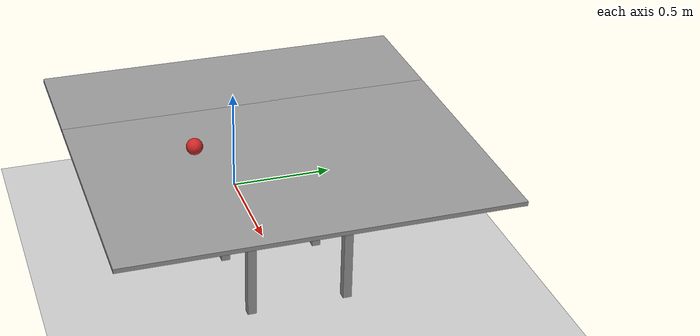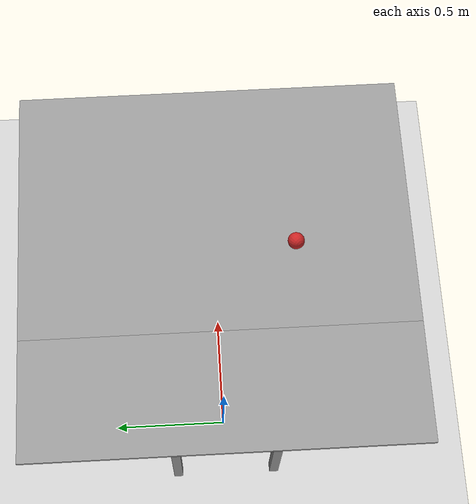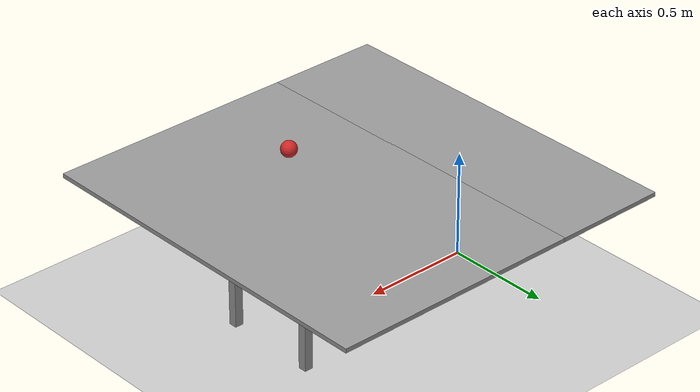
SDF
<sdf version="1.6">
 <world name="ur5_robot_base">
  <gravity>0 0 -9.81</gravity>
  <physics name="default_physics" default="0" type="ode">
   <max_step_size>0.001</max_step_size>
   <real_time_factor>1</real_time_factor>
   <real_time_update_rate>1000</real_time_update_rate>
  </physics>
  <scene><ambient>0.4 0.4 0.4 1</ambient><background>0.7 0.7 0.7 1</background><shadows>1</shadows></scene>
  <light name="sun" type="directional">
   <pose>0 0 10 0 -0 0</pose>
   <diffuse>0.8 0.8 0.8 1</diffuse>
   <specular>0.1 0.1 0.1 1</specular>
   <attenuation>
    <range>1000</range>
    <constant>0.9</constant>
    <linear>0.01</linear>
    <quadratic>0.001</quadratic>
   </attenuation>
   <direction>-0.5 0.5 -1</direction>
  </light>
  <model name="ground_plane">
   <static>1</static>
   <link name="link">
    <collision name="collision">
     <geometry><plane><normal>0 0 1</normal><size>100 100</size></plane></geometry>
     <surface><friction><ode><mu>100</mu><mu2>50</mu2></ode></friction></surface>
    </collision>
    <visual name="visual">
     <cast_shadows>0</cast_shadows>
     <geometry><plane><normal>0 0 1</normal><size>100 100</size></plane></geometry>
     <material>
      <script><uri>file://media/materials/scripts/gazebo.material</uri><name>Gazebo/Grey</name></script>
     </material>
    </visual>
   </link>
  </model>
  <magnetic_field>6e-06 2.3e-05 -4.2e-05</magnetic_field>
  <atmosphere type="adiabatic"/>
  <spherical_coordinates>
   <surface_model>EARTH_WGS84</surface_model>
   <latitude_deg>0</latitude_deg>
   <longitude_deg>0</longitude_deg>
   <elevation>0</elevation>
   <heading_deg>0</heading_deg>
  </spherical_coordinates>
  <model name="ur5_base_0">
   <link name="ur5_base::top_plate">
    <pose>0 0 0.58 0 -0 0</pose>
    <inertial>
     <inertia><ixx>nan</ixx><ixy>0</ixy><ixz>0</ixz><iyy>nan</iyy><iyz>0</iyz><izz>nan</izz></inertia>
     <mass>0</mass>
    </inertial>
    <visual name="top_plate_visual">
     <geometry><box><size>0.534136 1.75663 0.02</size></box></geometry>
     <material>
      <script><uri>file://media/materials/scripts/gazebo.material</uri><name>Gazebo/Grey</name></script>
      <ambient>0.3 0.3 0.3 1</ambient>
      <diffuse>0.7 0.7 0.7 1</diffuse>
      <specular>0.01 0.01 0.01 1</specular>
      <emissive>0 0 0 1</emissive>
     </material>
    </visual>
    <collision name="top_plate_collision">
     <geometry><box><size>0.534136 1.75663 0.02</size></box></geometry>
     <surface>
      <friction>
       <ode><mu>1</mu><mu2>1</mu2><fdir1>0 0 0</fdir1><slip1>0</slip1><slip2>0</slip2></ode>
       <torsional>
        <coefficient>1</coefficient>
        <patch_radius>0</patch_radius>
        <surface_radius>0</surface_radius>
        <use_patch_radius>1</use_patch_radius>
        <ode><slip>0</slip></ode>
       </torsional>
      </friction>
      <bounce><restitution_coefficient>0</restitution_coefficient><threshold>1e+06</threshold></bounce>
      <contact>
       <collide_without_contact>0</collide_without_contact>
       <collide_without_contact_bitmask>1</collide_without_contact_bitmask>
       <collide_bitmask>1</collide_bitmask>
       <ode>
        <soft_cfm>0</soft_cfm>
        <soft_erp>0.2</soft_erp>
        <kp>1e+13</kp>
        <kd>1</kd>
        <max_vel>0.01</max_vel>
        <min_depth>0</min_depth>
       </ode>
       <bullet>
        <split_impulse>1</split_impulse>
        <split_impulse_penetration_threshold>-0.01</split_impulse_penetration_threshold>
        <soft_cfm>0</soft_cfm>
        <soft_erp>0.2</soft_erp>
        <kp>1e+13</kp>
        <kd>1</kd>
       </bullet>
      </contact>
     </surface>
    </collision>
   </link>
   <link name="ur5_base::leg1">
    <pose>0.22 0.22 0.285 0 -0 0</pose>
    <visual name="leg1_visual">
     <geometry><box><size>0.04 0.04 0.57</size></box></geometry>
     <material>
      <script><uri>file://media/materials/scripts/gazebo.material</uri><name>Gazebo/Grey</name></script>
      <ambient>0.3 0.3 0.3 1</ambient>
      <diffuse>0.7 0.7 0.7 1</diffuse>
      <specular>0.01 0.01 0.01 1</specular>
      <emissive>0 0 0 1</emissive>
     </material>
    </visual>
    <collision name="leg1_collision">
     <geometry><box><size>0.04 0.04 0.57</size></box></geometry>
     <surface>
      <friction>
       <ode><mu>1</mu><mu2>1</mu2><fdir1>0 0 0</fdir1><slip1>0</slip1><slip2>0</slip2></ode>
       <torsional>
        <coefficient>1</coefficient>
        <patch_radius>0</patch_radius>
        <surface_radius>0</surface_radius>
        <use_patch_radius>1</use_patch_radius>
        <ode><slip>0</slip></ode>
       </torsional>
      </friction>
      <bounce><restitution_coefficient>0</restitution_coefficient><threshold>1e+06</threshold></bounce>
      <contact>
       <collide_without_contact>0</collide_without_contact>
       <collide_without_contact_bitmask>1</collide_without_contact_bitmask>
       <collide_bitmask>1</collide_bitmask>
       <ode>
        <soft_cfm>0</soft_cfm>
        <soft_erp>0.2</soft_erp>
        <kp>1e+13</kp>
        <kd>1</kd>
        <max_vel>0.01</max_vel>
        <min_depth>0</min_depth>
       </ode>
       <bullet>
        <split_impulse>1</split_impulse>
        <split_impulse_penetration_threshold>-0.01</split_impulse_penetration_threshold>
        <soft_cfm>0</soft_cfm>
        <soft_erp>0.2</soft_erp>
        <kp>1e+13</kp>
        <kd>1</kd>
       </bullet>
      </contact>
     </surface>
    </collision>
   </link>
   <link name="ur5_base::leg2">
    <pose>-0.22 0.22 0.285 0 -0 0</pose>
    <visual name="leg2_visual">
     <geometry><box><size>0.04 0.04 0.57</size></box></geometry>
     <material>
      <script><uri>file://media/materials/scripts/gazebo.material</uri><name>Gazebo/Grey</name></script>
      <ambient>0.3 0.3 0.3 1</ambient>
      <diffuse>0.7 0.7 0.7 1</diffuse>
      <specular>0.01 0.01 0.01 1</specular>
      <emissive>0 0 0 1</emissive>
     </material>
    </visual>
    <collision name="leg2_collision">
     <geometry><box><size>0.04 0.04 0.57</size></box></geometry>
     <surface>
      <friction>
       <ode><mu>1</mu><mu2>1</mu2><fdir1>0 0 0</fdir1><slip1>0</slip1><slip2>0</slip2></ode>
       <torsional>
        <coefficient>1</coefficient>
        <patch_radius>0</patch_radius>
        <surface_radius>0</surface_radius>
        <use_patch_radius>1</use_patch_radius>
        <ode><slip>0</slip></ode>
       </torsional>
      </friction>
      <bounce><restitution_coefficient>0</restitution_coefficient><threshold>1e+06</threshold></bounce>
      <contact>
       <collide_without_contact>0</collide_without_contact>
       <collide_without_contact_bitmask>1</collide_without_contact_bitmask>
       <collide_bitmask>1</collide_bitmask>
       <ode>
        <soft_cfm>0</soft_cfm>
        <soft_erp>0.2</soft_erp>
        <kp>1e+13</kp>
        <kd>1</kd>
        <max_vel>0.01</max_vel>
        <min_depth>0</min_depth>
       </ode>
       <bullet>
        <split_impulse>1</split_impulse>
        <split_impulse_penetration_threshold>-0.01</split_impulse_penetration_threshold>
        <soft_cfm>0</soft_cfm>
        <soft_erp>0.2</soft_erp>
        <kp>1e+13</kp>
        <kd>1</kd>
       </bullet>
      </contact>
     </surface>
    </collision>
   </link>
   <link name="ur5_base::leg3">
    <pose>0.22 -0.22 0.285 0 -0 0</pose>
    <visual name="leg3_visual">
     <geometry><box><size>0.04 0.04 0.57</size></box></geometry>
     <material>
      <script><uri>file://media/materials/scripts/gazebo.material</uri><name>Gazebo/Grey</name></script>
      <ambient>0.3 0.3 0.3 1</ambient>
      <diffuse>0.7 0.7 0.7 1</diffuse>
      <specular>0.01 0.01 0.01 1</specular>
      <emissive>0 0 0 1</emissive>
     </material>
    </visual>
    <collision name="leg3_collision">
     <geometry><box><size>0.04 0.04 0.57</size></box></geometry>
     <surface>
      <friction>
       <ode><mu>1</mu><mu2>1</mu2><fdir1>0 0 0</fdir1><slip1>0</slip1><slip2>0</slip2></ode>
       <torsional>
        <coefficient>1</coefficient>
        <patch_radius>0</patch_radius>
        <surface_radius>0</surface_radius>
        <use_patch_radius>1</use_patch_radius>
        <ode><slip>0</slip></ode>
       </torsional>
      </friction>
      <bounce><restitution_coefficient>0</restitution_coefficient><threshold>1e+06</threshold></bounce>
      <contact>
       <collide_without_contact>0</collide_without_contact>
       <collide_without_contact_bitmask>1</collide_without_contact_bitmask>
       <collide_bitmask>1</collide_bitmask>
       <ode>
        <soft_cfm>0</soft_cfm>
        <soft_erp>0.2</soft_erp>
        <kp>1e+13</kp>
        <kd>1</kd>
        <max_vel>0.01</max_vel>
        <min_depth>0</min_depth>
       </ode>
       <bullet>
        <split_impulse>1</split_impulse>
        <split_impulse_penetration_threshold>-0.01</split_impulse_penetration_threshold>
        <soft_cfm>0</soft_cfm>
        <soft_erp>0.2</soft_erp>
        <kp>1e+13</kp>
        <kd>1</kd>
       </bullet>
      </contact>
     </surface>
    </collision>
   </link>
   <link name="ur5_base::leg4">
    <pose>-0.22 -0.22 0.285 0 -0 0</pose>
    <visual name="leg4_visual">
     <geometry><box><size>0.04 0.04 0.57</size></box></geometry>
     <material>
      <script><uri>file://media/materials/scripts/gazebo.material</uri><name>Gazebo/Grey</name></script>
      <ambient>0.3 0.3 0.3 1</ambient>
      <diffuse>0.7 0.7 0.7 1</diffuse>
      <specular>0.01 0.01 0.01 1</specular>
      <emissive>0 0 0 1</emissive>
     </material>
    </visual>
    <collision name="leg4_collision">
     <geometry><box><size>0.04 0.04 0.57</size></box></geometry>
     <surface>
      <friction>
       <ode><mu>1</mu><mu2>1</mu2><fdir1>0 0 0</fdir1><slip1>0</slip1><slip2>0</slip2></ode>
       <torsional>
        <coefficient>1</coefficient>
        <patch_radius>0</patch_radius>
        <surface_radius>0</surface_radius>
        <use_patch_radius>1</use_patch_radius>
        <ode><slip>0</slip></ode>
       </torsional>
      </friction>
      <bounce><restitution_coefficient>0</restitution_coefficient><threshold>1e+06</threshold></bounce>
      <contact>
       <collide_without_contact>0</collide_without_contact>
       <collide_without_contact_bitmask>1</collide_without_contact_bitmask>
       <collide_bitmask>1</collide_bitmask>
       <ode>
        <soft_cfm>0</soft_cfm>
        <soft_erp>0.2</soft_erp>
        <kp>1e+13</kp>
        <kd>1</kd>
        <max_vel>0.01</max_vel>
        <min_depth>0</min_depth>
       </ode>
       <bullet>
        <split_impulse>1</split_impulse>
        <split_impulse_penetration_threshold>-0.01</split_impulse_penetration_threshold>
        <soft_cfm>0</soft_cfm>
        <soft_erp>0.2</soft_erp>
        <kp>1e+13</kp>
        <kd>1</kd>
       </bullet>
      </contact>
     </surface>
    </collision>
   </link>
   <static>1</static>
  </model>
  <model name="ur5_base_0_clone_0">
   <link name="ur5_base::top_plate">
    <pose>0 0 0.58 0 -0 0</pose>
    <inertial>
     <inertia><ixx>nan</ixx><ixy>0</ixy><ixz>0</ixz><iyy>nan</iyy><iyz>0</iyz><izz>nan</izz></inertia>
     <mass>0</mass>
    </inertial>
    <visual name="top_plate_visual">
     <geometry><box><size>1.18116 1.75663 0.02</size></box></geometry>
     <material>
      <script><uri>file://media/materials/scripts/gazebo.material</uri><name>Gazebo/Grey</name></script>
      <ambient>0.3 0.3 0.3 1</ambient>
      <diffuse>0.7 0.7 0.7 1</diffuse>
      <specular>0.01 0.01 0.01 1</specular>
      <emissive>0 0 0 1</emissive>
     </material>
    </visual>
    <collision name="top_plate_collision">
     <geometry><box><size>1.18116 1.75663 0.02</size></box></geometry>
     <surface>
      <friction>
       <ode><mu>1</mu><mu2>1</mu2><fdir1>0 0 0</fdir1><slip1>0</slip1><slip2>0</slip2></ode>
       <torsional>
        <coefficient>1</coefficient>
        <patch_radius>0</patch_radius>
        <surface_radius>0</surface_radius>
        <use_patch_radius>1</use_patch_radius>
        <ode><slip>0</slip></ode>
       </torsional>
      </friction>
      <bounce><restitution_coefficient>0</restitution_coefficient><threshold>1e+06</threshold></bounce>
      <contact>
       <collide_without_contact>0</collide_without_contact>
       <collide_without_contact_bitmask>1</collide_without_contact_bitmask>
       <collide_bitmask>1</collide_bitmask>
       <ode>
        <soft_cfm>0</soft_cfm>
        <soft_erp>0.2</soft_erp>
        <kp>1e+13</kp>
        <kd>1</kd>
        <max_vel>0.01</max_vel>
        <min_depth>0</min_depth>
       </ode>
       <bullet>
        <split_impulse>1</split_impulse>
        <split_impulse_penetration_threshold>-0.01</split_impulse_penetration_threshold>
        <soft_cfm>0</soft_cfm>
        <soft_erp>0.2</soft_erp>
        <kp>1e+13</kp>
        <kd>1</kd>
       </bullet>
      </contact>
     </surface>
    </collision>
   </link>
   <link name="ur5_base::leg1">
    <pose>0.22 0.22 0.285 0 -0 0</pose>
    <visual name="leg1_visual">
     <geometry><box><size>0.04 0.04 0.57</size></box></geometry>
     <material>
      <script><uri>file://media/materials/scripts/gazebo.material</uri><name>Gazebo/Grey</name></script>
      <ambient>0.3 0.3 0.3 1</ambient>
      <diffuse>0.7 0.7 0.7 1</diffuse>
      <specular>0.01 0.01 0.01 1</specular>
      <emissive>0 0 0 1</emissive>
     </material>
    </visual>
    <collision name="leg1_collision">
     <geometry><box><size>0.04 0.04 0.57</size></box></geometry>
     <surface>
      <friction>
       <ode><mu>1</mu><mu2>1</mu2><fdir1>0 0 0</fdir1><slip1>0</slip1><slip2>0</slip2></ode>
       <torsional>
        <coefficient>1</coefficient>
        <patch_radius>0</patch_radius>
        <surface_radius>0</surface_radius>
        <use_patch_radius>1</use_patch_radius>
        <ode><slip>0</slip></ode>
       </torsional>
      </friction>
      <bounce><restitution_coefficient>0</restitution_coefficient><threshold>1e+06</threshold></bounce>
      <contact>
       <collide_without_contact>0</collide_without_contact>
       <collide_without_contact_bitmask>1</collide_without_contact_bitmask>
       <collide_bitmask>1</collide_bitmask>
       <ode>
        <soft_cfm>0</soft_cfm>
        <soft_erp>0.2</soft_erp>
        <kp>1e+13</kp>
        <kd>1</kd>
        <max_vel>0.01</max_vel>
        <min_depth>0</min_depth>
       </ode>
       <bullet>
        <split_impulse>1</split_impulse>
        <split_impulse_penetration_threshold>-0.01</split_impulse_penetration_threshold>
        <soft_cfm>0</soft_cfm>
        <soft_erp>0.2</soft_erp>
        <kp>1e+13</kp>
        <kd>1</kd>
       </bullet>
      </contact>
     </surface>
    </collision>
   </link>
   <link name="ur5_base::leg2">
    <pose>-0.22 0.22 0.285 0 -0 0</pose>
    <visual name="leg2_visual">
     <geometry><box><size>0.04 0.04 0.57</size></box></geometry>
     <material>
      <script><uri>file://media/materials/scripts/gazebo.material</uri><name>Gazebo/Grey</name></script>
      <ambient>0.3 0.3 0.3 1</ambient>
      <diffuse>0.7 0.7 0.7 1</diffuse>
      <specular>0.01 0.01 0.01 1</specular>
      <emissive>0 0 0 1</emissive>
     </material>
    </visual>
    <collision name="leg2_collision">
     <geometry><box><size>0.04 0.04 0.57</size></box></geometry>
     <surface>
      <friction>
       <ode><mu>1</mu><mu2>1</mu2><fdir1>0 0 0</fdir1><slip1>0</slip1><slip2>0</slip2></ode>
       <torsional>
        <coefficient>1</coefficient>
        <patch_radius>0</patch_radius>
        <surface_radius>0</surface_radius>
        <use_patch_radius>1</use_patch_radius>
        <ode><slip>0</slip></ode>
       </torsional>
      </friction>
      <bounce><restitution_coefficient>0</restitution_coefficient><threshold>1e+06</threshold></bounce>
      <contact>
       <collide_without_contact>0</collide_without_contact>
       <collide_without_contact_bitmask>1</collide_without_contact_bitmask>
       <collide_bitmask>1</collide_bitmask>
       <ode>
        <soft_cfm>0</soft_cfm>
        <soft_erp>0.2</soft_erp>
        <kp>1e+13</kp>
        <kd>1</kd>
        <max_vel>0.01</max_vel>
        <min_depth>0</min_depth>
       </ode>
       <bullet>
        <split_impulse>1</split_impulse>
        <split_impulse_penetration_threshold>-0.01</split_impulse_penetration_threshold>
        <soft_cfm>0</soft_cfm>
        <soft_erp>0.2</soft_erp>
        <kp>1e+13</kp>
        <kd>1</kd>
       </bullet>
      </contact>
     </surface>
    </collision>
   </link>
   <link name="ur5_base::leg3">
    <pose>0.22 -0.22 0.285 0 -0 0</pose>
    <visual name="leg3_visual">
     <geometry><box><size>0.04 0.04 0.57</size></box></geometry>
     <material>
      <script><uri>file://media/materials/scripts/gazebo.material</uri><name>Gazebo/Grey</name></script>
      <ambient>0.3 0.3 0.3 1</ambient>
      <diffuse>0.7 0.7 0.7 1</diffuse>
      <specular>0.01 0.01 0.01 1</specular>
      <emissive>0 0 0 1</emissive>
     </material>
    </visual>
    <collision name="leg3_collision">
     <geometry><box><size>0.04 0.04 0.57</size></box></geometry>
     <surface>
      <friction>
       <ode><mu>1</mu><mu2>1</mu2><fdir1>0 0 0</fdir1><slip1>0</slip1><slip2>0</slip2></ode>
       <torsional>
        <coefficient>1</coefficient>
        <patch_radius>0</patch_radius>
        <surface_radius>0</surface_radius>
        <use_patch_radius>1</use_patch_radius>
        <ode><slip>0</slip></ode>
       </torsional>
      </friction>
      <bounce><restitution_coefficient>0</restitution_coefficient><threshold>1e+06</threshold></bounce>
      <contact>
       <collide_without_contact>0</collide_without_contact>
       <collide_without_contact_bitmask>1</collide_without_contact_bitmask>
       <collide_bitmask>1</collide_bitmask>
       <ode>
        <soft_cfm>0</soft_cfm>
        <soft_erp>0.2</soft_erp>
        <kp>1e+13</kp>
        <kd>1</kd>
        <max_vel>0.01</max_vel>
        <min_depth>0</min_depth>
       </ode>
       <bullet>
        <split_impulse>1</split_impulse>
        <split_impulse_penetration_threshold>-0.01</split_impulse_penetration_threshold>
        <soft_cfm>0</soft_cfm>
        <soft_erp>0.2</soft_erp>
        <kp>1e+13</kp>
        <kd>1</kd>
       </bullet>
      </contact>
     </surface>
    </collision>
   </link>
   <link name="ur5_base::leg4">
    <pose>-0.22 -0.22 0.285 0 -0 0</pose>
    <visual name="leg4_visual">
     <geometry><box><size>0.04 0.04 0.57</size></box></geometry>
     <material>
      <script><uri>file://media/materials/scripts/gazebo.material</uri><name>Gazebo/Grey</name></script>
      <ambient>0.3 0.3 0.3 1</ambient>
      <diffuse>0.7 0.7 0.7 1</diffuse>
      <specular>0.01 0.01 0.01 1</specular>
      <emissive>0 0 0 1</emissive>
     </material>
    </visual>
    <collision name="leg4_collision">
     <geometry><box><size>0.04 0.04 0.57</size></box></geometry>
     <surface>
      <friction>
       <ode><mu>1</mu><mu2>1</mu2><fdir1>0 0 0</fdir1><slip1>0</slip1><slip2>0</slip2></ode>
       <torsional>
        <coefficient>1</coefficient>
        <patch_radius>0</patch_radius>
        <surface_radius>0</surface_radius>
        <use_patch_radius>1</use_patch_radius>
        <ode><slip>0</slip></ode>
       </torsional>
      </friction>
      <bounce><restitution_coefficient>0</restitution_coefficient><threshold>1e+06</threshold></bounce>
      <contact>
       <collide_without_contact>0</collide_without_contact>
       <collide_without_contact_bitmask>1</collide_without_contact_bitmask>
       <collide_bitmask>1</collide_bitmask>
       <ode>
        <soft_cfm>0</soft_cfm>
        <soft_erp>0.2</soft_erp>
        <kp>1e+13</kp>
        <kd>1</kd>
        <max_vel>0.01</max_vel>
        <min_depth>0</min_depth>
       </ode>
       <bullet>
        <split_impulse>1</split_impulse>
        <split_impulse_penetration_threshold>-0.01</split_impulse_penetration_threshold>
        <soft_cfm>0</soft_cfm>
        <soft_erp>0.2</soft_erp>
        <kp>1e+13</kp>
        <kd>1</kd>
       </bullet>
      </contact>
     </surface>
    </collision>
   </link>
   <static>1</static>
   <pose>0.853144 -0.000134 0 0 -0 0</pose>
  </model>
  <model name="cricket_ball">
   <link name="link">
    <pose>0 0 0.0375 0 -0 0</pose>
    <inertial>
     <mass>0.1467</mass>
     <inertia>
      <ixx>8.25187e-05</ixx>
      <ixy>0</ixy>
      <ixz>0</ixz>
      <iyy>8.25187e-05</iyy>
      <iyz>0</iyz>
      <izz>8.25187e-05</izz>
     </inertia>
    </inertial>
    <collision name="collision">
     <geometry><sphere><radius>0.0375</radius></sphere></geometry>
     <surface>
      <contact>
       <poissons_ratio>0.347</poissons_ratio>
       <elastic_modulus>8.8e+09</elastic_modulus>
       <ode><kp>100000</kp><kd>100</kd><max_vel>100</max_vel><min_depth>0.001</min_depth></ode>
      </contact>
      <friction>
       <torsional>
        <coefficient>1</coefficient>
        <use_patch_radius>0</use_patch_radius>
        <surface_radius>0.01</surface_radius>
       </torsional>
      </friction>
     </surface>
    </collision>
    <visual name="visual">
     <geometry><sphere><radius>0.0375</radius></sphere></geometry>
     <material>
      <script><uri>file://media/materials/scripts/gazebo.material</uri><name>Gazebo/Red</name></script>
     </material>
    </visual>
    <velocity_decay><linear>0</linear><angular>0.005</angular></velocity_decay>
   </link>
   <pose>0.625263 -0.373649 0.639865 2.73154 1.1712 -2.9989</pose>
  </model>
 </world>
</sdf>
